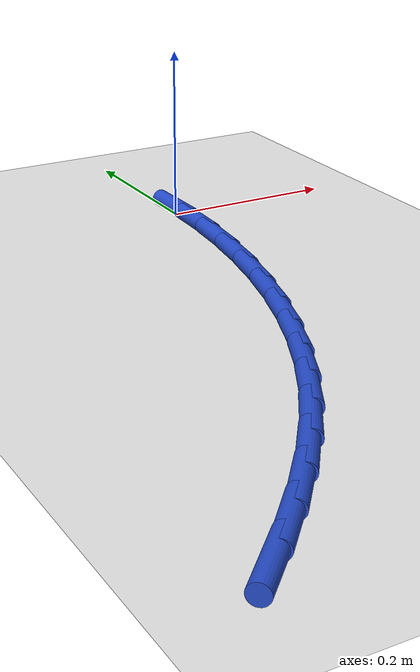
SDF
<sdf version="1.6">
 <world name="default">
  <model name="ground_plane">
   <static>1</static>
   <link name="link">
    <collision name="collision">
     <geometry><plane><normal>0 0 1</normal><size>100 100</size></plane></geometry>
     <surface><friction><ode><mu>100</mu><mu2>50</mu2></ode></friction></surface>
    </collision>
    <visual name="visual">
     <cast_shadows>0</cast_shadows>
     <geometry><plane><normal>0 0 1</normal><size>100 100</size></plane></geometry>
     <material>
      <script><uri>file://media/materials/scripts/gazebo.material</uri><name>Gazebo/WhiteGlow</name></script>
     </material>
    </visual>
   </link>
  </model>
  <model name="line">
   <link name="link_0">
    <pose>1.734723475976807e-17 4.163336342344337e-17 0.01 0 1.57 -1.552763050670357</pose>
    <collision name="collision">
     <geometry><cylinder><radius>0.01</radius><length>0.08</length></cylinder></geometry>
    </collision>
    <visual name="visual">
     <material>
      <script><name>Gazebo/Blue</name><uri>file://media/materials/scripts/gazebo.material</uri></script>
     </material>
     <geometry><cylinder><radius>0.01</radius><length>0.08</length></cylinder></geometry>
    </visual>
   </link>
   <link name="link_106">
    <pose>-0.29221891411384476 -0.6933227021560475 0.01 0 1.57 0.7900461354899827</pose>
    <collision name="collision">
     <geometry><cylinder><radius>0.01</radius><length>0.08</length></cylinder></geometry>
    </collision>
    <visual name="visual">
     <material>
      <script><name>Gazebo/Blue</name><uri>file://media/materials/scripts/gazebo.material</uri></script>
     </material>
     <geometry><cylinder><radius>0.01</radius><length>0.08</length></cylinder></geometry>
    </visual>
   </link>
   <link name="link_107">
    <pose>-0.2536074733999196 -0.6543506529493067 0.01 0 1.57 0.8373743461864862</pose>
    <collision name="collision">
     <geometry><cylinder><radius>0.01</radius><length>0.08</length></cylinder></geometry>
    </collision>
    <visual name="visual">
     <material>
      <script><name>Gazebo/Blue</name><uri>file://media/materials/scripts/gazebo.material</uri></script>
     </material>
     <geometry><cylinder><radius>0.01</radius><length>0.08</length></cylinder></geometry>
    </visual>
   </link>
   <link name="link_108">
    <pose>-0.217193472750956 -0.6139400004192199 0.01 0 1.57 0.8909752224233172</pose>
    <collision name="collision">
     <geometry><cylinder><radius>0.01</radius><length>0.08</length></cylinder></geometry>
    </collision>
    <visual name="visual">
     <material>
      <script><name>Gazebo/Blue</name><uri>file://media/materials/scripts/gazebo.material</uri></script>
     </material>
     <geometry><cylinder><radius>0.01</radius><length>0.08</length></cylinder></geometry>
    </visual>
   </link>
   <link name="link_109">
    <pose>-0.18319440229845427 -0.5718809702939397 0.01 0 1.57 0.9505885402043036</pose>
    <collision name="collision">
     <geometry><cylinder><radius>0.01</radius><length>0.08</length></cylinder></geometry>
    </collision>
    <visual name="visual">
     <material>
      <script><name>Gazebo/Blue</name><uri>file://media/materials/scripts/gazebo.material</uri></script>
     </material>
     <geometry><cylinder><radius>0.01</radius><length>0.08</length></cylinder></geometry>
    </visual>
   </link>
   <link name="link_110">
    <pose>-0.1518277521739136 -0.5279637883016176 0.01 0 1.57 1.0156326482404117</pose>
    <collision name="collision">
     <geometry><cylinder><radius>0.01</radius><length>0.08</length></cylinder></geometry>
    </collision>
    <visual name="visual">
     <material>
      <script><name>Gazebo/Blue</name><uri>file://media/materials/scripts/gazebo.material</uri></script>
     </material>
     <geometry><cylinder><radius>0.01</radius><length>0.08</length></cylinder></geometry>
    </visual>
   </link>
   <link name="link_111">
    <pose>-0.12330886642990045 -0.48198283100859457 0.01 0 1.57 1.082356956641752</pose>
    <collision name="collision">
     <geometry><cylinder><radius>0.01</radius><length>0.08</length></cylinder></geometry>
    </collision>
    <visual name="visual">
     <material>
      <script><name>Gazebo/Blue</name><uri>file://media/materials/scripts/gazebo.material</uri></script>
     </material>
     <geometry><cylinder><radius>0.01</radius><length>0.08</length></cylinder></geometry>
    </visual>
   </link>
   <link name="link_112">
    <pose>-0.09776247431744542 -0.43390773758357565 0.01 0 1.57 1.1464849098961485</pose>
    <collision name="collision">
     <geometry><cylinder><radius>0.01</radius><length>0.08</length></cylinder></geometry>
    </collision>
    <visual name="visual">
     <material>
      <script><name>Gazebo/Blue</name><uri>file://media/materials/scripts/gazebo.material</uri></script>
     </material>
     <geometry><cylinder><radius>0.01</radius><length>0.08</length></cylinder></geometry>
    </visual>
   </link>
   <link name="link_113">
    <pose>-0.07519125864015518 -0.38394420330997053 0.01 0 1.57 1.2079420768258389</pose>
    <collision name="collision">
     <geometry><cylinder><radius>0.01</radius><length>0.08</length></cylinder></geometry>
    </collision>
    <visual name="visual">
     <material>
      <script><name>Gazebo/Blue</name><uri>file://media/materials/scripts/gazebo.material</uri></script>
     </material>
     <geometry><cylinder><radius>0.01</radius><length>0.08</length></cylinder></geometry>
    </visual>
   </link>
   <link name="link_114">
    <pose>-0.05558929452798501 -0.3323145720016562 0.01 0 1.57 1.266998432239019</pose>
    <collision name="collision">
     <geometry><cylinder><radius>0.01</radius><length>0.08</length></cylinder></geometry>
    </collision>
    <visual name="visual">
     <material>
      <script><name>Gazebo/Blue</name><uri>file://media/materials/scripts/gazebo.material</uri></script>
     </material>
     <geometry><cylinder><radius>0.01</radius><length>0.08</length></cylinder></geometry>
    </visual>
   </link>
   <link name="link_115">
    <pose>-0.03895065711089032 -0.2792411874725089 0.01 0 1.57 1.3239544254805702</pose>
    <collision name="collision">
     <geometry><cylinder><radius>0.01</radius><length>0.08</length></cylinder></geometry>
    </collision>
    <visual name="visual">
     <material>
      <script><name>Gazebo/Blue</name><uri>file://media/materials/scripts/gazebo.material</uri></script>
     </material>
     <geometry><cylinder><radius>0.01</radius><length>0.08</length></cylinder></geometry>
    </visual>
   </link>
   <link name="link_116">
    <pose>-0.025269421518827176 -0.22494639353640772 0.01 0 1.57 1.3791286700033496</pose>
    <collision name="collision">
     <geometry><cylinder><radius>0.01</radius><length>0.08</length></cylinder></geometry>
    </collision>
    <visual name="visual">
     <material>
      <script><name>Gazebo/Blue</name><uri>file://media/materials/scripts/gazebo.material</uri></script>
     </material>
     <geometry><cylinder><radius>0.01</radius><length>0.08</length></cylinder></geometry>
    </visual>
   </link>
   <link name="link_117">
    <pose>-0.014539662881750941 -0.1696525340072289 0.01 0 1.57 1.4328493422191733</pose>
    <collision name="collision">
     <geometry><cylinder><radius>0.01</radius><length>0.08</length></cylinder></geometry>
    </collision>
    <visual name="visual">
     <material>
      <script><name>Gazebo/Blue</name><uri>file://media/materials/scripts/gazebo.material</uri></script>
     </material>
     <geometry><cylinder><radius>0.01</radius><length>0.08</length></cylinder></geometry>
    </visual>
   </link>
   <link name="link_118">
    <pose>-0.00675545632961726 -0.11358195269885002 0.01 0 1.57 1.4854486166985965</pose>
    <collision name="collision">
     <geometry><cylinder><radius>0.01</radius><length>0.08</length></cylinder></geometry>
    </collision>
    <visual name="visual">
     <material>
      <script><name>Gazebo/Blue</name><uri>file://media/materials/scripts/gazebo.material</uri></script>
     </material>
     <geometry><cylinder><radius>0.01</radius><length>0.08</length></cylinder></geometry>
    </visual>
   </link>
   <link name="link_119">
    <pose>-0.0019108769923816826 -0.0569569934251474 0.01 0 1.57 1.5372594348124236</pose>
    <collision name="collision">
     <geometry><cylinder><radius>0.01</radius><length>0.08</length></cylinder></geometry>
    </collision>
    <visual name="visual">
     <material>
      <script><name>Gazebo/Blue</name><uri>file://media/materials/scripts/gazebo.material</uri></script>
     </material>
     <geometry><cylinder><radius>0.01</radius><length>0.08</length></cylinder></geometry>
    </visual>
   </link>
  </model>
 </world>
</sdf>
